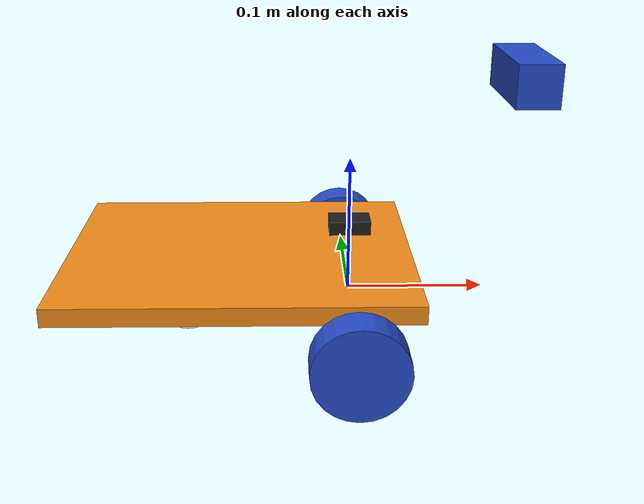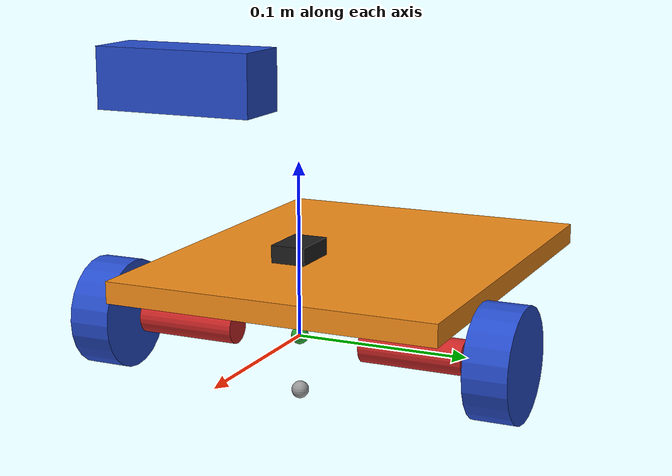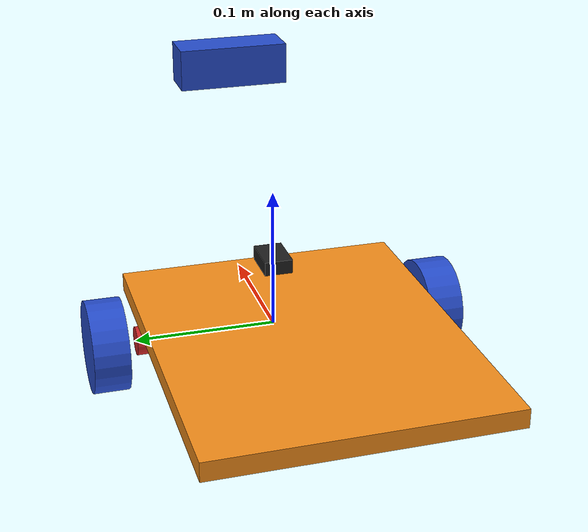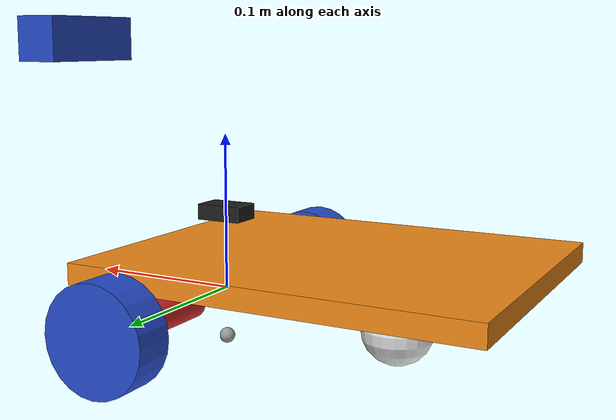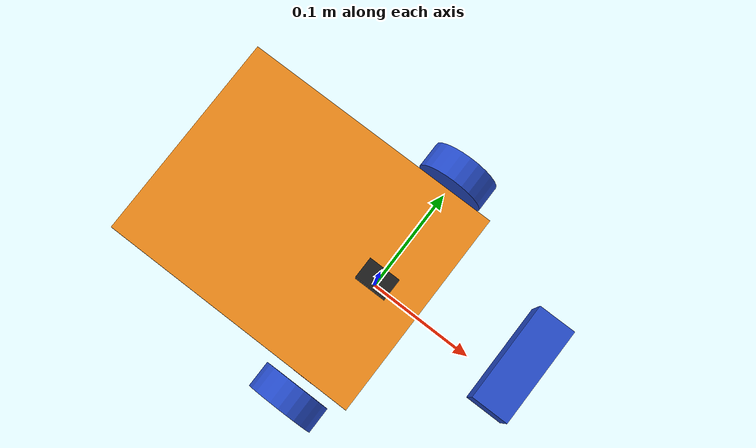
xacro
<?xml version='1.0'?>

<robot name="mensabot" xmlns:xacro="http://www.ros.org/wiki/xacro">

  <xacro:arg name="use_sim" default="false"/>
  <xacro:arg name="model_only" default="False" />

  <!-- Include Gazebo-specific plugins only in simulation. -->
  <xacro:if value="$(arg use_sim)">
    <xacro:include filename="$(find mensabot_description)/urdf/mensabot.gazebo" />
  </xacro:if>

  <!-- Load the real ros2_control hardware interface on the physical robot. -->
  <xacro:unless value="$(arg use_sim)">
    <xacro:include filename="$(find mensabot_description)/urdf/mensabot.ros2_control_real.xacro" />
    <xacro:mensabot_ros2_control/>
  </xacro:unless>

  <xacro:include filename="$(find mensabot_description)/urdf/materials.xacro" />

  <!-- BASE FOOTPRINT -->

  <joint name="base_footprint_joint" type="fixed">
    <origin xyz="0 0 -0.0325" rpy="0 0 0"/>
    <parent link="base_link"/>
    <child link="base_footprint"/>
  </joint>

  <link name="base_footprint">
    <visual name="center_visual">
      <geometry>
        <sphere radius="0.005"/>
      </geometry>
      <material name="grey"/>
    </visual>
  </link>

  <!-- BASE LINK -->

  <link name="base_link">

    <visual name="center_visual">
      <geometry>
        <sphere radius="0.005"/>
      </geometry>
      <material name="green"/>
    </visual>

    <!-- CASTER -->
    <collision name="caster_collision">
      <origin xyz="-0.12 0 -0.01" rpy="0 0 0"/>
      <geometry>
        <sphere radius="0.0225"/>
      </geometry>
    </collision>

    <visual name="caster_visual">
      <origin xyz="-0.12 0 -0.01" rpy="0 0 0"/>
      <geometry>
        <sphere radius="0.0225"/>
      </geometry>
      <material name="white"/>
    </visual>

    <!-- Simple stable physics -->
    <inertial>
      <mass value="1.0"/>
      <origin xyz="-0.05 0 0"/>
      <inertia
        ixx="0.02"
        iyy="0.02"
        izz="0.02"
        ixy="0"
        ixz="0"
        iyz="0"/>
    </inertial>

  </link>

  <gazebo reference="base_link">
    <material>Gazebo/Orange</material>
  </gazebo>

  <!-- MAIN BODY -->

  <joint name="body_joint" type="fixed">
    <origin xyz="-0.08 0 0.025" rpy="0 0 0"/>
    <parent link="base_link"/>
    <child link="body_link"/>
  </joint>

  <link name="body_link">

    <visual name="body_visual">
      <geometry>
        <box size="0.25 0.20 0.013"/>
      </geometry>
      <material name="orange"/>
    </visual>

    <!-- Collision intentionally disabled for now -->

  </link>

  <!-- LEFT WHEEL -->

  <joint name="left_wheel_joint" type="continuous">

    <origin xyz="0 0.121 0" rpy="0 0 0"/>

    <parent link="base_link"/>
    <child link="left_wheel"/>

    <axis xyz="0 1 0"/>

    <limit
      effort="100"
      velocity="30"/>

  </joint>

  <link name="left_wheel">

    <inertial>
      <mass value="0.5"/>
      <origin xyz="0 0 0"/>

      <inertia
        ixx="0.001"
        iyy="0.001"
        izz="0.001"
        ixy="0"
        ixz="0"
        iyz="0"/>
    </inertial>

    <collision>
      <origin xyz="0 0 0" rpy="1.570796 0 0"/>
      <geometry>
        <cylinder
          radius="0.0325"
          length="0.025"/>
      </geometry>
    </collision>

    <visual name="left_wheel_visual">
      <origin xyz="0 0 0" rpy="1.570796 0 0"/>
      <geometry>
        <cylinder
          radius="0.0325"
          length="0.025"/>
      </geometry>
      <material name="blue"/>
    </visual>

  </link>

  <gazebo reference="left_wheel">
    <mu1>2.0</mu1>
    <mu2>2.0</mu2>
    <material>Gazebo/Blue</material>
  </gazebo>

  <!-- RIGHT WHEEL -->

  <joint name="right_wheel_joint" type="continuous">

    <origin xyz="0 -0.121 0" rpy="0 0 0"/>

    <parent link="base_link"/>
    <child link="right_wheel"/>

    <axis xyz="0 -1 0"/>

    <limit
      effort="100"
      velocity="30"/>

  </joint>

  <link name="right_wheel">

    <inertial>
      <mass value="0.5"/>
      <origin xyz="0 0 0"/>

      <inertia
        ixx="0.001"
        iyy="0.001"
        izz="0.001"
        ixy="0"
        ixz="0"
        iyz="0"/>
    </inertial>

    <collision>
      <origin xyz="0 0 0" rpy="1.570796 0 0"/>
      <geometry>
        <cylinder
          radius="0.0325"
          length="0.025"/>
      </geometry>
    </collision>

    <visual name="right_wheel_visual">
      <origin xyz="0 0 0" rpy="1.570796 0 0"/>
      <geometry>
        <cylinder
          radius="0.0325"
          length="0.025"/>
      </geometry>
      <material name="blue"/>
    </visual>

  </link>

  <gazebo reference="right_wheel">
    <mu1>2.0</mu1>
    <mu2>2.0</mu2>
    <material>Gazebo/Blue</material>
  </gazebo>

  <!-- IMU -->

  <joint name="imu_joint" type="fixed">

    <origin
      xyz="0 0 0.05"
      rpy="0 0 0"/>

    <parent link="base_link"/>
    <child link="imu_link"/>

  </joint>

  <link name="imu_link">

    <visual name="imu_visual">
      <geometry>
        <box size="0.03 0.02 0.01"/>
      </geometry>
      <material name="black"/>
    </visual>

  </link>

  <gazebo reference="imu_link">
    <material>Gazebo/BLACK</material>
  </gazebo>

  <!-- RGB-D CAMERA -->

  <!-- Camera housing / mounting link. The x-axis points forward. -->
  <joint name="camera_joint" type="fixed">
    <origin xyz="0.12 0 0.16" rpy="0 0 0"/>
    <parent link="base_link"/>
    <child link="camera_link"/>
  </joint>

  <link name="camera_link">
    <visual name="camera_visual">
      <origin xyz="0 0 0" rpy="0 0 0"/>
      <geometry>
        <box size="0.03 0.08 0.03"/>
      </geometry>
      <material name="blue"/>
    </visual>
  </link>

  <gazebo reference="camera_link">
    <material>Gazebo/Blue</material>
  </gazebo>

  <joint name="camera_optical_joint" type="fixed">
    <origin xyz="0 0 0" rpy="${-pi/2} 0 ${-pi/2}"/>
    <parent link="camera_link"/>
    <child link="camera_optical_frame"/>
  </joint>
  <link name="camera_optical_frame"/>

  <gazebo reference="camera_link">
    <material>Gazebo/Black</material>
  </gazebo>

  <!-- LEFT MOTOR -->

  <joint name="left_motor_joint" type="fixed">

    <origin
      xyz="0 0.07 0"
      rpy="0 ${pi/2} ${pi/2}"/>

    <parent link="base_link"/>
    <child link="left_motor_link"/>

  </joint>

  <link name="left_motor_link">

    <visual name="left_motor_visual">
      <geometry>
        <cylinder
          radius="0.01"
          length="0.06"/>
      </geometry>
      <material name="red"/>
    </visual>

  </link>

  <!-- RIGHT MOTOR -->

  <joint name="right_motor_joint" type="fixed">

    <origin
      xyz="0 -0.07 0"
      rpy="0 ${pi/2} ${pi/2}"/>

    <parent link="base_link"/>
    <child link="right_motor_link"/>

  </joint>

  <link name="right_motor_link">

    <visual name="right_motor_visual">
      <geometry>
        <cylinder
          radius="0.01"
          length="0.06"/>
      </geometry>
      <material name="red"/>
    </visual>

  </link>

</robot>
